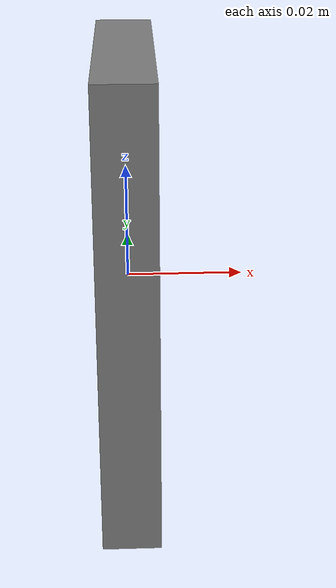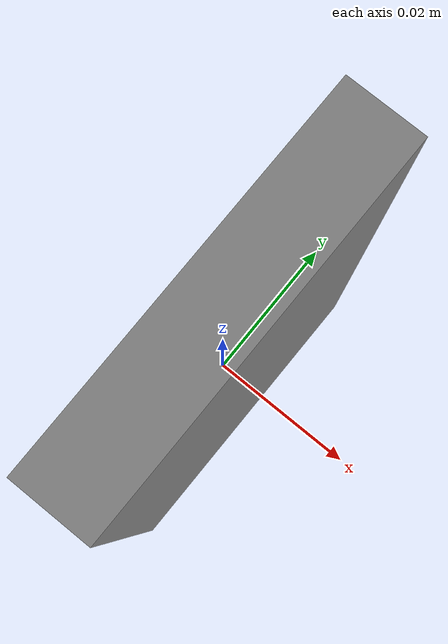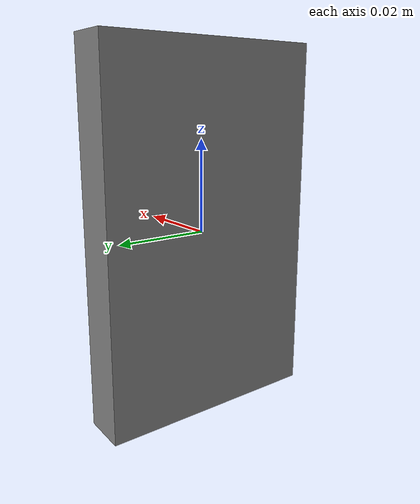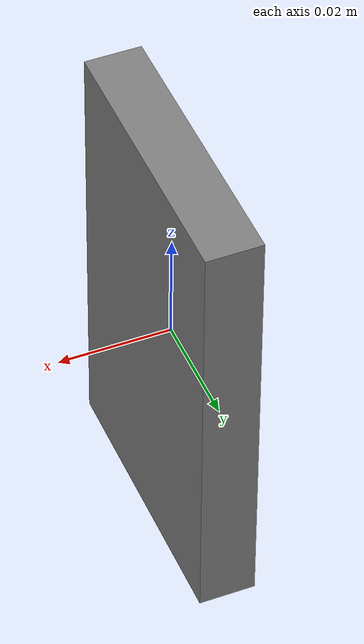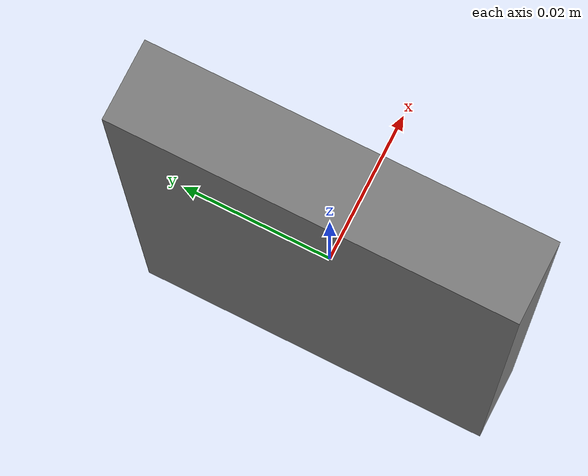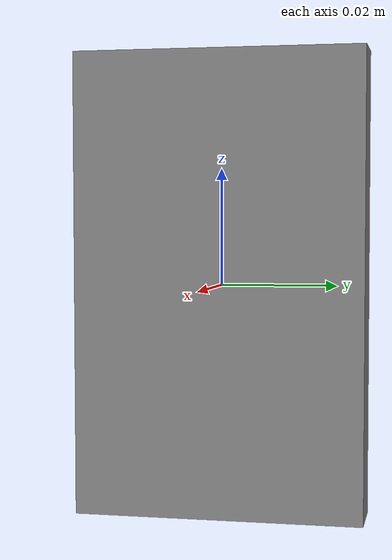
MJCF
<mujoco model="drive"><option gravity="0 0 0"/><worldbody><body name="base"><inertial pos="0 0 0" mass="0.1" diaginertia="0.001 0.001 0.001"/><body name="pad"><inertial pos="0 0 0" mass="0.1" diaginertia="0.000074166667 0.000054166667 0.000021666667"/><joint name="slide" type="slide" axis="1 0 0" range="-0.02 0.02" damping="0"/><geom name="surface" type="box" size="0.005 0.025 0.04" friction="0 0 0"/></body></body></worldbody><actuator><position name="drive" joint="slide" kp="500" kv="10" ctrlrange="-0.02 0.02" forcerange="-2 2"/></actuator></mujoco>
